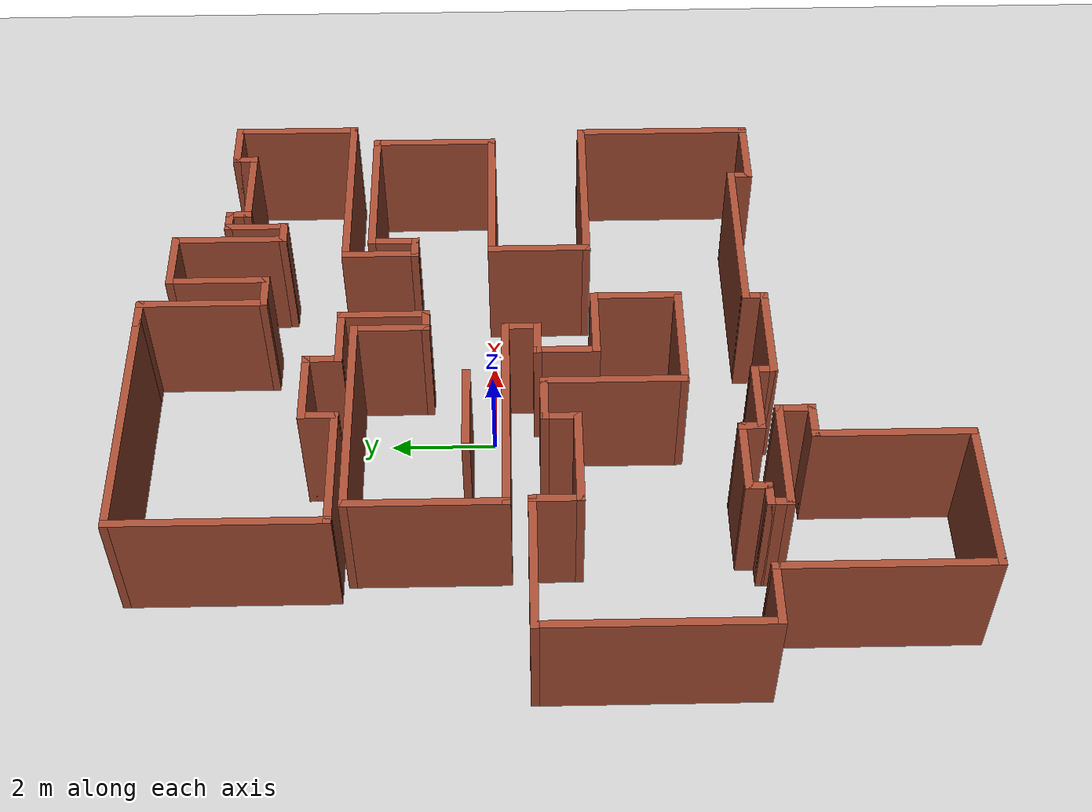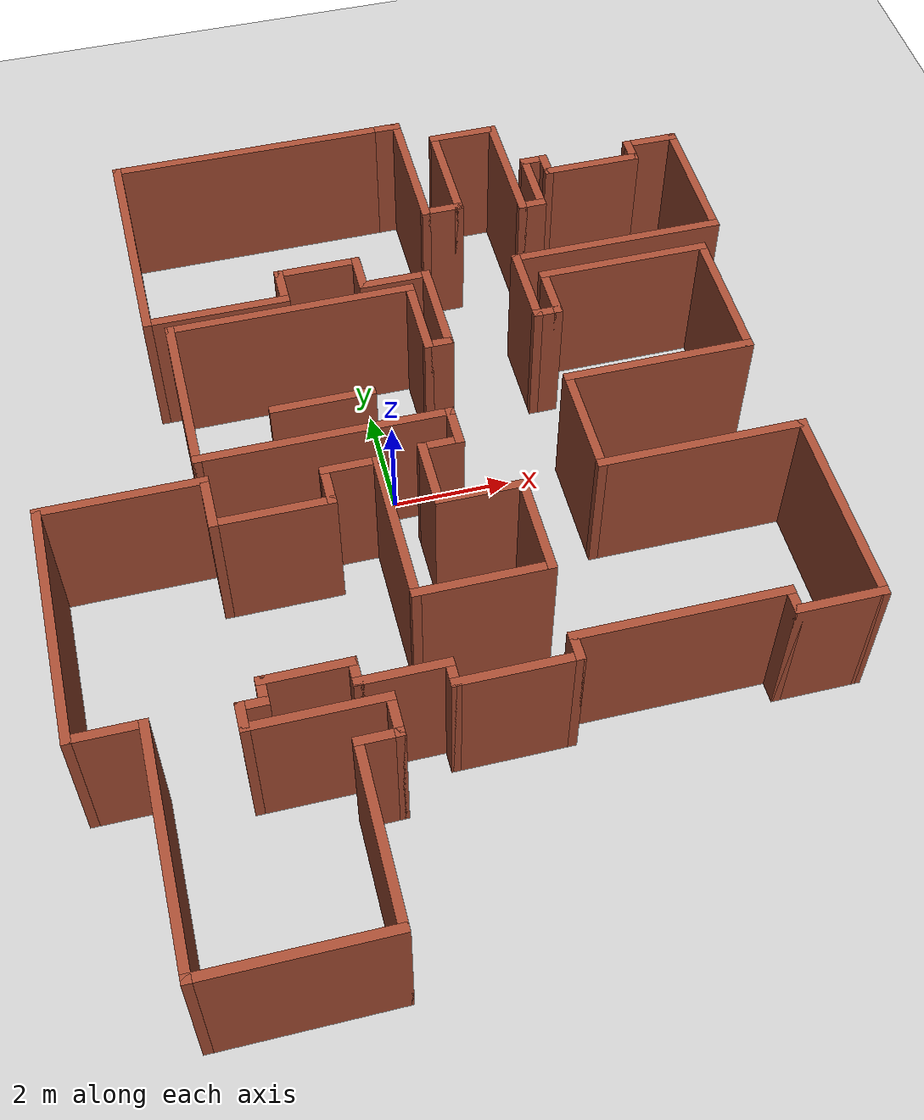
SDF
<sdf version="1.6">
 <world name="default">
  <model name="ground_plane">
   <static>1</static>
   <link name="link">
    <collision name="collision">
     <geometry><plane><normal>0 0 1</normal><size>100 100</size></plane></geometry>
     <surface>
      <contact><collide_bitmask>65535</collide_bitmask></contact>
      <friction><ode><mu>100</mu><mu2>50</mu2></ode></friction>
     </surface>
    </collision>
    <visual name="visual">
     <cast_shadows>0</cast_shadows>
     <geometry><plane><normal>0 0 1</normal><size>100 100</size></plane></geometry>
     <material>
      <script><uri>file://media/materials/scripts/gazebo.material</uri><name>Gazebo/Grey</name></script>
     </material>
    </visual>
   </link>
  </model>
  <model name="map_69">
   <pose>0.356982 -0.966036 0 0 -0 0</pose>
   <link name="Wall_0">
    <collision name="Wall_0_Collision">
     <geometry><box><size>4.82036 0.15 2.5</size></box></geometry>
     <pose>0 0 1.25 0 -0 0</pose>
    </collision>
    <visual name="Wall_0_Visual">
     <pose>0 0 1.25 0 -0 0</pose>
     <geometry><box><size>4.82036 0.15 2.5</size></box></geometry>
     <material>
      <script><uri>file://media/materials/scripts/gazebo.material</uri><name>Gazebo/Bricks</name></script>
      <ambient>1 1 1 1</ambient>
     </material>
     <meta><layer>0</layer></meta>
    </visual>
    <pose>-1.56482 7.675 0 0 -0 3.14159</pose>
   </link>
   <link name="Wall_10">
    <collision name="Wall_10_Collision">
     <geometry><box><size>1.5 0.15 2.5</size></box></geometry>
     <pose>0 0 1.25 0 -0 0</pose>
    </collision>
    <visual name="Wall_10_Visual">
     <pose>0 0 1.25 0 -0 0</pose>
     <geometry><box><size>1.5 0.15 2.5</size></box></geometry>
     <material>
      <script><uri>file://media/materials/scripts/gazebo.material</uri><name>Gazebo/Bricks</name></script>
      <ambient>1 1 1 1</ambient>
     </material>
     <meta><layer>0</layer></meta>
    </visual>
    <pose>-0.875 4.425 0 0 -0 0</pose>
   </link>
   <link name="Wall_11">
    <collision name="Wall_11_Collision">
     <geometry><box><size>0.75 0.15 2.5</size></box></geometry>
     <pose>0 0 1.25 0 -0 0</pose>
    </collision>
    <visual name="Wall_11_Visual">
     <pose>0 0 1.25 0 -0 0</pose>
     <geometry><box><size>0.75 0.15 2.5</size></box></geometry>
     <material>
      <script><uri>file://media/materials/scripts/gazebo.material</uri><name>Gazebo/Bricks</name></script>
      <ambient>1 1 1 1</ambient>
     </material>
     <meta><layer>0</layer></meta>
    </visual>
    <pose>-0.2 4.125 0 0 -0 -1.5708</pose>
   </link>
   <link name="Wall_12">
    <collision name="Wall_12_Collision">
     <geometry><box><size>1.25 0.15 2.5</size></box></geometry>
     <pose>0 0 1.25 0 -0 0</pose>
    </collision>
    <visual name="Wall_12_Visual">
     <pose>0 0 1.25 0 -0 0</pose>
     <geometry><box><size>1.25 0.15 2.5</size></box></geometry>
     <material>
      <script><uri>file://media/materials/scripts/gazebo.material</uri><name>Gazebo/Bricks</name></script>
      <ambient>1 1 1 1</ambient>
     </material>
     <meta><layer>0</layer></meta>
    </visual>
    <pose>0.35 3.825 0 0 -0 0</pose>
   </link>
   <link name="Wall_15">
    <collision name="Wall_15_Collision">
     <geometry><box><size>1.75 0.15 2.5</size></box></geometry>
     <pose>0 0 1.25 0 -0 0</pose>
    </collision>
    <visual name="Wall_15_Visual">
     <pose>0 0 1.25 0 -0 0</pose>
     <geometry><box><size>1.75 0.15 2.5</size></box></geometry>
     <material>
      <script><uri>file://media/materials/scripts/gazebo.material</uri><name>Gazebo/Bricks</name></script>
      <ambient>1 1 1 1</ambient>
     </material>
     <meta><layer>0</layer></meta>
    </visual>
    <pose>0.9 3.025 0 0 -0 -1.5708</pose>
   </link>
   <link name="Wall_16">
    <collision name="Wall_16_Collision">
     <geometry><box><size>0.5 0.15 2.5</size></box></geometry>
     <pose>0 0 1.25 0 -0 0</pose>
    </collision>
    <visual name="Wall_16_Visual">
     <pose>0 0 1.25 0 -0 0</pose>
     <geometry><box><size>0.5 0.15 2.5</size></box></geometry>
     <material>
      <script><uri>file://media/materials/scripts/gazebo.material</uri><name>Gazebo/Bricks</name></script>
      <ambient>1 1 1 1</ambient>
     </material>
     <meta><layer>0</layer></meta>
    </visual>
    <pose>0.725 2.225 0 0 -0 3.14159</pose>
   </link>
   <link name="Wall_19">
    <collision name="Wall_19_Collision">
     <geometry><box><size>1.5 0.15 2.5</size></box></geometry>
     <pose>0 0 1.25 0 -0 0</pose>
    </collision>
    <visual name="Wall_19_Visual">
     <pose>0 0 1.25 0 -0 0</pose>
     <geometry><box><size>1.5 0.15 2.5</size></box></geometry>
     <material>
      <script><uri>file://media/materials/scripts/gazebo.material</uri><name>Gazebo/Bricks</name></script>
      <ambient>1 1 1 1</ambient>
     </material>
     <meta><layer>0</layer></meta>
    </visual>
    <pose>0.55 2.9 0 0 -0 1.5708</pose>
   </link>
   <link name="Wall_20">
    <collision name="Wall_20_Collision">
     <geometry><box><size>4.25 0.15 2.5</size></box></geometry>
     <pose>0 0 1.25 0 -0 0</pose>
    </collision>
    <visual name="Wall_20_Visual">
     <pose>0 0 1.25 0 -0 0</pose>
     <geometry><box><size>4.25 0.15 2.5</size></box></geometry>
     <material>
      <script><uri>file://media/materials/scripts/gazebo.material</uri><name>Gazebo/Bricks</name></script>
      <ambient>1 1 1 1</ambient>
     </material>
     <meta><layer>0</layer></meta>
    </visual>
    <pose>-1.5 3.575 0 0 -0 3.14159</pose>
   </link>
   <link name="Wall_21">
    <collision name="Wall_21_Collision">
     <geometry><box><size>3 0.15 2.5</size></box></geometry>
     <pose>0 0 1.25 0 -0 0</pose>
    </collision>
    <visual name="Wall_21_Visual">
     <pose>0 0 1.25 0 -0 0</pose>
     <geometry><box><size>3 0.15 2.5</size></box></geometry>
     <material>
      <script><uri>file://media/materials/scripts/gazebo.material</uri><name>Gazebo/Bricks</name></script>
      <ambient>1 1 1 1</ambient>
     </material>
     <meta><layer>0</layer></meta>
    </visual>
    <pose>-3.55 2.15 0 0 -0 -1.5708</pose>
   </link>
   <link name="Wall_22">
    <collision name="Wall_22_Collision">
     <geometry><box><size>4.25 0.15 2.5</size></box></geometry>
     <pose>0 0 1.25 0 -0 0</pose>
    </collision>
    <visual name="Wall_22_Visual">
     <pose>0 0 1.25 0 -0 0</pose>
     <geometry><box><size>4.25 0.15 2.5</size></box></geometry>
     <material>
      <script><uri>file://media/materials/scripts/gazebo.material</uri><name>Gazebo/Bricks</name></script>
      <ambient>1 1 1 1</ambient>
     </material>
     <meta><layer>0</layer></meta>
    </visual>
    <pose>-1.5 0.725 0 0 -0 0</pose>
   </link>
   <link name="Wall_23">
    <collision name="Wall_23_Collision">
     <geometry><box><size>0.75 0.15 2.5</size></box></geometry>
     <pose>0 0 1.25 0 -0 0</pose>
    </collision>
    <visual name="Wall_23_Visual">
     <pose>0 0 1.25 0 -0 0</pose>
     <geometry><box><size>0.75 0.15 2.5</size></box></geometry>
     <material>
      <script><uri>file://media/materials/scripts/gazebo.material</uri><name>Gazebo/Bricks</name></script>
      <ambient>1 1 1 1</ambient>
     </material>
     <meta><layer>0</layer></meta>
    </visual>
    <pose>0.55 0.425 0 0 -0 -1.5708</pose>
   </link>
   <link name="Wall_24">
    <collision name="Wall_24_Collision">
     <geometry><box><size>0.75 0.15 2.5</size></box></geometry>
     <pose>0 0 1.25 0 -0 0</pose>
    </collision>
    <visual name="Wall_24_Visual">
     <pose>0 0 1.25 0 -0 0</pose>
     <geometry><box><size>0.75 0.15 2.5</size></box></geometry>
     <material>
      <script><uri>file://media/materials/scripts/gazebo.material</uri><name>Gazebo/Bricks</name></script>
      <ambient>1 1 1 1</ambient>
     </material>
     <meta><layer>0</layer></meta>
    </visual>
    <pose>0.25 0.125 0 0 -0 3.14159</pose>
   </link>
   <link name="Wall_25">
    <collision name="Wall_25_Collision">
     <geometry><box><size>1.25 0.15 2.5</size></box></geometry>
     <pose>0 0 1.25 0 -0 0</pose>
    </collision>
    <visual name="Wall_25_Visual">
     <pose>0 0 1.25 0 -0 0</pose>
     <geometry><box><size>1.25 0.15 2.5</size></box></geometry>
     <material>
      <script><uri>file://media/materials/scripts/gazebo.material</uri><name>Gazebo/Bricks</name></script>
      <ambient>1 1 1 1</ambient>
     </material>
     <meta><layer>0</layer></meta>
    </visual>
    <pose>-0.05 -0.425 0 0 -0 -1.5708</pose>
   </link>
   <link name="Wall_26">
    <collision name="Wall_26_Collision">
     <geometry><box><size>1.5 0.15 2.5</size></box></geometry>
     <pose>0 0 1.25 0 -0 0</pose>
    </collision>
    <visual name="Wall_26_Visual">
     <pose>0 0 1.25 0 -0 0</pose>
     <geometry><box><size>1.5 0.15 2.5</size></box></geometry>
     <material>
      <script><uri>file://media/materials/scripts/gazebo.material</uri><name>Gazebo/Bricks</name></script>
      <ambient>1 1 1 1</ambient>
     </material>
     <meta><layer>0</layer></meta>
    </visual>
    <pose>0.625 -0.975 0 0 -0 0</pose>
   </link>
   <link name="Wall_27">
    <collision name="Wall_27_Collision">
     <geometry><box><size>1.75 0.15 2.5</size></box></geometry>
     <pose>0 0 1.25 0 -0 0</pose>
    </collision>
    <visual name="Wall_27_Visual">
     <pose>0 0 1.25 0 -0 0</pose>
     <geometry><box><size>1.75 0.15 2.5</size></box></geometry>
     <material>
      <script><uri>file://media/materials/scripts/gazebo.material</uri><name>Gazebo/Bricks</name></script>
      <ambient>1 1 1 1</ambient>
     </material>
     <meta><layer>0</layer></meta>
    </visual>
    <pose>1.3 -1.775 0 0 -0 -1.5708</pose>
   </link>
   <link name="Wall_28">
    <collision name="Wall_28_Collision">
     <geometry><box><size>2.25 0.15 2.5</size></box></geometry>
     <pose>0 0 1.25 0 -0 0</pose>
    </collision>
    <visual name="Wall_28_Visual">
     <pose>0 0 1.25 0 -0 0</pose>
     <geometry><box><size>2.25 0.15 2.5</size></box></geometry>
     <material>
      <script><uri>file://media/materials/scripts/gazebo.material</uri><name>Gazebo/Bricks</name></script>
      <ambient>1 1 1 1</ambient>
     </material>
     <meta><layer>0</layer></meta>
    </visual>
    <pose>0.25 -2.575 0 0 -0 3.14159</pose>
   </link>
   <link name="Wall_29">
    <collision name="Wall_29_Collision">
     <geometry><box><size>2.75 0.15 2.5</size></box></geometry>
     <pose>0 0 1.25 0 -0 0</pose>
    </collision>
    <visual name="Wall_29_Visual">
     <pose>0 0 1.25 0 -0 0</pose>
     <geometry><box><size>2.75 0.15 2.5</size></box></geometry>
     <material>
      <script><uri>file://media/materials/scripts/gazebo.material</uri><name>Gazebo/Bricks</name></script>
      <ambient>1 1 1 1</ambient>
     </material>
     <meta><layer>0</layer></meta>
    </visual>
    <pose>-0.8 -1.275 0 0 -0 1.5708</pose>
   </link>
   <link name="Wall_30">
    <collision name="Wall_30_Collision">
     <geometry><box><size>1 0.15 2.5</size></box></geometry>
     <pose>0 0 1.25 0 -0 0</pose>
    </collision>
    <visual name="Wall_30_Visual">
     <pose>0 0 1.25 0 -0 0</pose>
     <geometry><box><size>1 0.15 2.5</size></box></geometry>
     <material>
      <script><uri>file://media/materials/scripts/gazebo.material</uri><name>Gazebo/Bricks</name></script>
      <ambient>1 1 1 1</ambient>
     </material>
     <meta><layer>0</layer></meta>
    </visual>
    <pose>-1.225 0.025 0 0 -0 3.14159</pose>
   </link>
   <link name="Wall_31">
    <collision name="Wall_31_Collision">
     <geometry><box><size>0.75 0.15 2.5</size></box></geometry>
     <pose>0 0 1.25 0 -0 0</pose>
    </collision>
    <visual name="Wall_31_Visual">
     <pose>0 0 1.25 0 -0 0</pose>
     <geometry><box><size>0.75 0.15 2.5</size></box></geometry>
     <material>
      <script><uri>file://media/materials/scripts/gazebo.material</uri><name>Gazebo/Bricks</name></script>
      <ambient>1 1 1 1</ambient>
     </material>
     <meta><layer>0</layer></meta>
    </visual>
    <pose>-1.65 -0.275 0 0 -0 -1.5708</pose>
   </link>
   <link name="Wall_32">
    <collision name="Wall_32_Collision">
     <geometry><box><size>2 0.15 2.5</size></box></geometry>
     <pose>0 0 1.25 0 -0 0</pose>
    </collision>
    <visual name="Wall_32_Visual">
     <pose>0 0 1.25 0 -0 0</pose>
     <geometry><box><size>2 0.15 2.5</size></box></geometry>
     <material>
      <script><uri>file://media/materials/scripts/gazebo.material</uri><name>Gazebo/Bricks</name></script>
      <ambient>1 1 1 1</ambient>
     </material>
     <meta><layer>0</layer></meta>
    </visual>
    <pose>-2.575 -0.575 0 0 -0 3.14159</pose>
   </link>
   <link name="Wall_33">
    <collision name="Wall_33_Collision">
     <geometry><box><size>1 0.15 2.5</size></box></geometry>
     <pose>0 0 1.25 0 -0 0</pose>
    </collision>
    <visual name="Wall_33_Visual">
     <pose>0 0 1.25 0 -0 0</pose>
     <geometry><box><size>1 0.15 2.5</size></box></geometry>
     <material>
      <script><uri>file://media/materials/scripts/gazebo.material</uri><name>Gazebo/Bricks</name></script>
      <ambient>1 1 1 1</ambient>
     </material>
     <meta><layer>0</layer></meta>
    </visual>
    <pose>-3.5 -0.15 0 0 -0 1.5708</pose>
   </link>
   <link name="Wall_34">
    <collision name="Wall_34_Collision">
     <geometry><box><size>2.75 0.15 2.5</size></box></geometry>
     <pose>0 0 1.25 0 -0 0</pose>
    </collision>
    <visual name="Wall_34_Visual">
     <pose>0 0 1.25 0 -0 0</pose>
     <geometry><box><size>2.75 0.15 2.5</size></box></geometry>
     <material>
      <script><uri>file://media/materials/scripts/gazebo.material</uri><name>Gazebo/Bricks</name></script>
      <ambient>1 1 1 1</ambient>
     </material>
     <meta><layer>0</layer></meta>
    </visual>
    <pose>-4.8 0.275 0 0 -0 3.14159</pose>
   </link>
   <link name="Wall_35">
    <collision name="Wall_35_Collision">
     <geometry><box><size>4.25 0.15 2.5</size></box></geometry>
     <pose>0 0 1.25 0 -0 0</pose>
    </collision>
    <visual name="Wall_35_Visual">
     <pose>0 0 1.25 0 -0 0</pose>
     <geometry><box><size>4.25 0.15 2.5</size></box></geometry>
     <material>
      <script><uri>file://media/materials/scripts/gazebo.material</uri><name>Gazebo/Bricks</name></script>
      <ambient>1 1 1 1</ambient>
     </material>
     <meta><layer>0</layer></meta>
    </visual>
    <pose>-6.1 -1.775 0 0 -0 -1.5708</pose>
   </link>
   <link name="Wall_36">
    <collision name="Wall_36_Collision">
     <geometry><box><size>1.25 0.15 2.5</size></box></geometry>
     <pose>0 0 1.25 0 -0 0</pose>
    </collision>
    <visual name="Wall_36_Visual">
     <pose>0 0 1.25 0 -0 0</pose>
     <geometry><box><size>1.25 0.15 2.5</size></box></geometry>
     <material>
      <script><uri>file://media/materials/scripts/gazebo.material</uri><name>Gazebo/Bricks</name></script>
      <ambient>1 1 1 1</ambient>
     </material>
     <meta><layer>0</layer></meta>
    </visual>
    <pose>-5.55 -3.825 0 0 -0 0</pose>
   </link>
   <link name="Wall_37">
    <collision name="Wall_37_Collision">
     <geometry><box><size>4 0.15 2.5</size></box></geometry>
     <pose>0 0 1.25 0 -0 0</pose>
    </collision>
    <visual name="Wall_37_Visual">
     <pose>0 0 1.25 0 -0 0</pose>
     <geometry><box><size>4 0.15 2.5</size></box></geometry>
     <material>
      <script><uri>file://media/materials/scripts/gazebo.material</uri><name>Gazebo/Bricks</name></script>
      <ambient>1 1 1 1</ambient>
     </material>
     <meta><layer>0</layer></meta>
    </visual>
    <pose>-5 -5.75 0 0 -0 -1.5708</pose>
   </link>
   <link name="Wall_38">
    <collision name="Wall_38_Collision">
     <geometry><box><size>3 0.15 2.5</size></box></geometry>
     <pose>0 0 1.25 0 -0 0</pose>
    </collision>
    <visual name="Wall_38_Visual">
     <pose>0 0 1.25 0 -0 0</pose>
     <geometry><box><size>3 0.15 2.5</size></box></geometry>
     <material>
      <script><uri>file://media/materials/scripts/gazebo.material</uri><name>Gazebo/Bricks</name></script>
      <ambient>1 1 1 1</ambient>
     </material>
     <meta><layer>0</layer></meta>
    </visual>
    <pose>-3.575 -7.675 0 0 -0 0</pose>
   </link>
   <link name="Wall_39">
    <collision name="Wall_39_Collision">
     <geometry><box><size>3 0.15 2.5</size></box></geometry>
     <pose>0 0 1.25 0 -0 0</pose>
    </collision>
    <visual name="Wall_39_Visual">
     <pose>0 0 1.25 0 -0 0</pose>
     <geometry><box><size>3 0.15 2.5</size></box></geometry>
     <material>
      <script><uri>file://media/materials/scripts/gazebo.material</uri><name>Gazebo/Bricks</name></script>
      <ambient>1 1 1 1</ambient>
     </material>
     <meta><layer>0</layer></meta>
    </visual>
    <pose>-2.15 -6.25 0 0 -0 1.5708</pose>
   </link>
   <link name="Wall_40">
    <collision name="Wall_40_Collision">
     <geometry><box><size>0.75 0.15 2.5</size></box></geometry>
     <pose>0 0 1.25 0 -0 0</pose>
    </collision>
    <visual name="Wall_40_Visual">
     <pose>0 0 1.25 0 -0 0</pose>
     <geometry><box><size>0.75 0.15 2.5</size></box></geometry>
     <material>
      <script><uri>file://media/materials/scripts/gazebo.material</uri><name>Gazebo/Bricks</name></script>
      <ambient>1 1 1 1</ambient>
     </material>
     <meta><layer>0</layer></meta>
    </visual>
    <pose>-1.85 -4.825 0 0 -0 0</pose>
   </link>
   <link name="Wall_41">
    <collision name="Wall_41_Collision">
     <geometry><box><size>0.75 0.15 2.5</size></box></geometry>
     <pose>0 0 1.25 0 -0 0</pose>
    </collision>
    <visual name="Wall_41_Visual">
     <pose>0 0 1.25 0 -0 0</pose>
     <geometry><box><size>0.75 0.15 2.5</size></box></geometry>
     <material>
      <script><uri>file://media/materials/scripts/gazebo.material</uri><name>Gazebo/Bricks</name></script>
      <ambient>1 1 1 1</ambient>
     </material>
     <meta><layer>0</layer></meta>
    </visual>
    <pose>-1.55 -4.525 0 0 -0 1.5708</pose>
   </link>
   <link name="Wall_42">
    <collision name="Wall_42_Collision">
     <geometry><box><size>2.25 0.15 2.5</size></box></geometry>
     <pose>0 0 1.25 0 -0 0</pose>
    </collision>
    <visual name="Wall_42_Visual">
     <pose>0 0 1.25 0 -0 0</pose>
     <geometry><box><size>2.25 0.15 2.5</size></box></geometry>
     <material>
      <script><uri>file://media/materials/scripts/gazebo.material</uri><name>Gazebo/Bricks</name></script>
      <ambient>1 1 1 1</ambient>
     </material>
     <meta><layer>0</layer></meta>
    </visual>
    <pose>-2.6 -4.225 0 0 -0 3.14159</pose>
   </link>
   <link name="Wall_45">
    <collision name="Wall_45_Collision">
     <geometry><box><size>0.5 0.15 2.5</size></box></geometry>
     <pose>0 0 1.25 0 -0 0</pose>
    </collision>
    <visual name="Wall_45_Visual">
     <pose>0 0 1.25 0 -0 0</pose>
     <geometry><box><size>0.5 0.15 2.5</size></box></geometry>
     <material>
      <script><uri>file://media/materials/scripts/gazebo.material</uri><name>Gazebo/Bricks</name></script>
      <ambient>1 1 1 1</ambient>
     </material>
     <meta><layer>0</layer></meta>
    </visual>
    <pose>-3.65 -4.05 0 0 -0 1.5708</pose>
   </link>
   <link name="Wall_46">
    <collision name="Wall_46_Collision">
     <geometry><box><size>0.5 0.15 2.5</size></box></geometry>
     <pose>0 0 1.25 0 -0 0</pose>
    </collision>
    <visual name="Wall_46_Visual">
     <pose>0 0 1.25 0 -0 0</pose>
     <geometry><box><size>0.5 0.15 2.5</size></box></geometry>
     <material>
      <script><uri>file://media/materials/scripts/gazebo.material</uri><name>Gazebo/Bricks</name></script>
      <ambient>1 1 1 1</ambient>
     </material>
     <meta><layer>0</layer></meta>
    </visual>
    <pose>-3.475 -3.875 0 0 -0 0</pose>
   </link>
   <link name="Wall_47">
    <collision name="Wall_47_Collision">
     <geometry><box><size>0.5 0.15 2.5</size></box></geometry>
     <pose>0 0 1.25 0 -0 0</pose>
    </collision>
    <visual name="Wall_47_Visual">
     <pose>0 0 1.25 0 -0 0</pose>
     <geometry><box><size>0.5 0.15 2.5</size></box></geometry>
     <material>
      <script><uri>file://media/materials/scripts/gazebo.material</uri><name>Gazebo/Bricks</name></script>
      <ambient>1 1 1 1</ambient>
     </material>
     <meta><layer>0</layer></meta>
    </visual>
    <pose>-3.3 -3.7 0 0 -0 1.5708</pose>
   </link>
   <link name="Wall_53">
    <collision name="Wall_53_Collision">
     <geometry><box><size>1.5 0.15 2.5</size></box></geometry>
     <pose>0 0 1.25 0 -0 0</pose>
    </collision>
    <visual name="Wall_53_Visual">
     <pose>0 0 1.25 0 -0 0</pose>
     <geometry><box><size>1.5 0.15 2.5</size></box></geometry>
     <material>
      <script><uri>file://media/materials/scripts/gazebo.material</uri><name>Gazebo/Bricks</name></script>
      <ambient>1 1 1 1</ambient>
     </material>
     <meta><layer>0</layer></meta>
    </visual>
    <pose>-2.625 -3.525 0 0 -0 0</pose>
   </link>
   <link name="Wall_54">
    <collision name="Wall_54_Collision">
     <geometry><box><size>0.5 0.15 2.5</size></box></geometry>
     <pose>0 0 1.25 0 -0 0</pose>
    </collision>
    <visual name="Wall_54_Visual">
     <pose>0 0 1.25 0 -0 0</pose>
     <geometry><box><size>0.5 0.15 2.5</size></box></geometry>
     <material>
      <script><uri>file://media/materials/scripts/gazebo.material</uri><name>Gazebo/Bricks</name></script>
      <ambient>1 1 1 1</ambient>
     </material>
     <meta><layer>0</layer></meta>
    </visual>
    <pose>-1.95 -3.7 0 0 -0 -1.5708</pose>
   </link>
   <link name="Wall_55">
    <collision name="Wall_55_Collision">
     <geometry><box><size>1.5 0.15 2.5</size></box></geometry>
     <pose>0 0 1.25 0 -0 0</pose>
    </collision>
    <visual name="Wall_55_Visual">
     <pose>0 0 1.25 0 -0 0</pose>
     <geometry><box><size>1.5 0.15 2.5</size></box></geometry>
     <material>
      <script><uri>file://media/materials/scripts/gazebo.material</uri><name>Gazebo/Bricks</name></script>
      <ambient>1 1 1 1</ambient>
     </material>
     <meta><layer>0</layer></meta>
    </visual>
    <pose>-1.275 -3.875 0 0 -0 0</pose>
   </link>
   <link name="Wall_56">
    <collision name="Wall_56_Collision">
     <geometry><box><size>0.5 0.15 2.5</size></box></geometry>
     <pose>0 0 1.25 0 -0 0</pose>
    </collision>
    <visual name="Wall_56_Visual">
     <pose>0 0 1.25 0 -0 0</pose>
     <geometry><box><size>0.5 0.15 2.5</size></box></geometry>
     <material>
      <script><uri>file://media/materials/scripts/gazebo.material</uri><name>Gazebo/Bricks</name></script>
      <ambient>1 1 1 1</ambient>
     </material>
     <meta><layer>0</layer></meta>
    </visual>
    <pose>-0.6 -4.05 0 0 -0 -1.5708</pose>
   </link>
   <link name="Wall_57">
    <collision name="Wall_57_Collision">
     <geometry><box><size>2 0.15 2.5</size></box></geometry>
     <pose>0 0 1.25 0 -0 0</pose>
    </collision>
    <visual name="Wall_57_Visual">
     <pose>0 0 1.25 0 -0 0</pose>
     <geometry><box><size>2 0.15 2.5</size></box></geometry>
     <material>
      <script><uri>file://media/materials/scripts/gazebo.material</uri><name>Gazebo/Bricks</name></script>
      <ambient>1 1 1 1</ambient>
     </material>
     <meta><layer>0</layer></meta>
    </visual>
    <pose>0.325 -4.225 0 0 -0 0</pose>
   </link>
   <link name="Wall_58">
    <collision name="Wall_58_Collision">
     <geometry><box><size>0.5 0.15 2.5</size></box></geometry>
     <pose>0 0 1.25 0 -0 0</pose>
    </collision>
    <visual name="Wall_58_Visual">
     <pose>0 0 1.25 0 -0 0</pose>
     <geometry><box><size>0.5 0.15 2.5</size></box></geometry>
     <material>
      <script><uri>file://media/materials/scripts/gazebo.material</uri><name>Gazebo/Bricks</name></script>
      <ambient>1 1 1 1</ambient>
     </material>
     <meta><layer>0</layer></meta>
    </visual>
    <pose>1.25 -4.05 0 0 -0 1.5708</pose>
   </link>
   <link name="Wall_59">
    <collision name="Wall_59_Collision">
     <geometry><box><size>3.5 0.15 2.5</size></box></geometry>
     <pose>0 0 1.25 0 -0 0</pose>
    </collision>
    <visual name="Wall_59_Visual">
     <pose>0 0 1.25 0 -0 0</pose>
     <geometry><box><size>3.5 0.15 2.5</size></box></geometry>
     <material>
      <script><uri>file://media/materials/scripts/gazebo.material</uri><name>Gazebo/Bricks</name></script>
      <ambient>1 1 1 1</ambient>
     </material>
     <meta><layer>0</layer></meta>
    </visual>
    <pose>2.925 -3.875 0 0 -0 0</pose>
   </link>
   <link name="Wall_60">
    <collision name="Wall_60_Collision">
     <geometry><box><size>0.5 0.15 2.5</size></box></geometry>
     <pose>0 0 1.25 0 -0 0</pose>
    </collision>
    <visual name="Wall_60_Visual">
     <pose>0 0 1.25 0 -0 0</pose>
     <geometry><box><size>0.5 0.15 2.5</size></box></geometry>
     <material>
      <script><uri>file://media/materials/scripts/gazebo.material</uri><name>Gazebo/Bricks</name></script>
      <ambient>1 1 1 1</ambient>
     </material>
     <meta><layer>0</layer></meta>
    </visual>
    <pose>4.6 -4.05 0 0 -0 -1.5708</pose>
   </link>
   <link name="Wall_61">
    <collision name="Wall_61_Collision">
     <geometry><box><size>1.5 0.15 2.5</size></box></geometry>
     <pose>0 0 1.25 0 -0 0</pose>
    </collision>
    <visual name="Wall_61_Visual">
     <pose>0 0 1.25 0 -0 0</pose>
     <geometry><box><size>1.5 0.15 2.5</size></box></geometry>
     <material>
      <script><uri>file://media/materials/scripts/gazebo.material</uri><name>Gazebo/Bricks</name></script>
      <ambient>1 1 1 1</ambient>
     </material>
     <meta><layer>0</layer></meta>
    </visual>
    <pose>5.275 -4.225 0 0 -0 0</pose>
   </link>
   <link name="Wall_62">
    <collision name="Wall_62_Collision">
     <geometry><box><size>3.5 0.15 2.5</size></box></geometry>
     <pose>0 0 1.25 0 -0 0</pose>
    </collision>
    <visual name="Wall_62_Visual">
     <pose>0 0 1.25 0 -0 0</pose>
     <geometry><box><size>3.5 0.15 2.5</size></box></geometry>
     <material>
      <script><uri>file://media/materials/scripts/gazebo.material</uri><name>Gazebo/Bricks</name></script>
      <ambient>1 1 1 1</ambient>
     </material>
     <meta><layer>0</layer></meta>
    </visual>
    <pose>5.95 -2.55 0 0 -0 1.5708</pose>
   </link>
   <link name="Wall_63">
    <collision name="Wall_63_Collision">
     <geometry><box><size>3.5 0.15 2.5</size></box></geometry>
     <pose>0 0 1.25 0 -0 0</pose>
    </collision>
    <visual name="Wall_63_Visual">
     <pose>0 0 1.25 0 -0 0</pose>
     <geometry><box><size>3.5 0.15 2.5</size></box></geometry>
     <material>
      <script><uri>file://media/materials/scripts/gazebo.material</uri><name>Gazebo/Bricks</name></script>
      <ambient>1 1 1 1</ambient>
     </material>
     <meta><layer>0</layer></meta>
    </visual>
    <pose>4.275 -0.875 0 0 -0 3.14159</pose>
   </link>
   <link name="Wall_64">
    <collision name="Wall_64_Collision">
     <geometry><box><size>2 0.15 2.5</size></box></geometry>
     <pose>0 0 1.25 0 -0 0</pose>
    </collision>
    <visual name="Wall_64_Visual">
     <pose>0 0 1.25 0 -0 0</pose>
     <geometry><box><size>2 0.15 2.5</size></box></geometry>
     <material>
      <script><uri>file://media/materials/scripts/gazebo.material</uri><name>Gazebo/Bricks</name></script>
      <ambient>1 1 1 1</ambient>
     </material>
     <meta><layer>0</layer></meta>
    </visual>
    <pose>2.6 0.05 0 0 -0 1.5708</pose>
   </link>
   <link name="Wall_65">
    <collision name="Wall_65_Collision">
     <geometry><box><size>3.25 0.15 2.5</size></box></geometry>
     <pose>0 0 1.25 0 -0 0</pose>
    </collision>
    <visual name="Wall_65_Visual">
     <pose>0 0 1.25 0 -0 0</pose>
     <geometry><box><size>3.25 0.15 2.5</size></box></geometry>
     <material>
      <script><uri>file://media/materials/scripts/gazebo.material</uri><name>Gazebo/Bricks</name></script>
      <ambient>1 1 1 1</ambient>
     </material>
     <meta><layer>0</layer></meta>
    </visual>
    <pose>4.15 0.975 0 0 -0 0</pose>
   </link>
   <link name="Wall_66">
    <collision name="Wall_66_Collision">
     <geometry><box><size>2.5 0.15 2.5</size></box></geometry>
     <pose>0 0 1.25 0 -0 0</pose>
    </collision>
    <visual name="Wall_66_Visual">
     <pose>0 0 1.25 0 -0 0</pose>
     <geometry><box><size>2.5 0.15 2.5</size></box></geometry>
     <material>
      <script><uri>file://media/materials/scripts/gazebo.material</uri><name>Gazebo/Bricks</name></script>
      <ambient>1 1 1 1</ambient>
     </material>
     <meta><layer>0</layer></meta>
    </visual>
    <pose>5.7 2.15 0 0 -0 1.5708</pose>
   </link>
   <link name="Wall_67">
    <collision name="Wall_67_Collision">
     <geometry><box><size>3 0.15 2.5</size></box></geometry>
     <pose>0 0 1.25 0 -0 0</pose>
    </collision>
    <visual name="Wall_67_Visual">
     <pose>0 0 1.25 0 -0 0</pose>
     <geometry><box><size>3 0.15 2.5</size></box></geometry>
     <material>
      <script><uri>file://media/materials/scripts/gazebo.material</uri><name>Gazebo/Bricks</name></script>
      <ambient>1 1 1 1</ambient>
     </material>
     <meta><layer>0</layer></meta>
    </visual>
    <pose>4.275 3.325 0 0 -0 3.14159</pose>
   </link>
   <link name="Wall_69">
    <collision name="Wall_69_Collision">
     <geometry><box><size>1 0.15 2.5</size></box></geometry>
     <pose>0 0 1.25 0 -0 0</pose>
    </collision>
    <visual name="Wall_69_Visual">
     <pose>0 0 1.25 0 -0 0</pose>
     <geometry><box><size>1 0.15 2.5</size></box></geometry>
     <material>
      <script><uri>file://media/materials/scripts/gazebo.material</uri><name>Gazebo/Bricks</name></script>
      <ambient>1 1 1 1</ambient>
     </material>
     <meta><layer>0</layer></meta>
    </visual>
    <pose>2.85 2.9 0 0 -0 -1.5708</pose>
   </link>
   <link name="Wall_7">
    <collision name="Wall_7_Collision">
     <geometry><box><size>4 0.15 2.5</size></box></geometry>
     <pose>0 0 1.25 0 -0 0</pose>
    </collision>
    <visual name="Wall_7_Visual">
     <pose>0 0 1.25 0 -0 0</pose>
     <geometry><box><size>4 0.15 2.5</size></box></geometry>
     <material>
      <script><uri>file://media/materials/scripts/gazebo.material</uri><name>Gazebo/Bricks</name></script>
      <ambient>1 1 1 1</ambient>
     </material>
     <meta><layer>0</layer></meta>
    </visual>
    <pose>-3.9 5.75 0 0 -0 -1.5708</pose>
   </link>
   <link name="Wall_70">
    <collision name="Wall_70_Collision">
     <geometry><box><size>0.5 0.15 2.5</size></box></geometry>
     <pose>0 0 1.25 0 -0 0</pose>
    </collision>
    <visual name="Wall_70_Visual">
     <pose>0 0 1.25 0 -0 0</pose>
     <geometry><box><size>0.5 0.15 2.5</size></box></geometry>
     <material>
      <script><uri>file://media/materials/scripts/gazebo.material</uri><name>Gazebo/Bricks</name></script>
      <ambient>1 1 1 1</ambient>
     </material>
     <meta><layer>0</layer></meta>
    </visual>
    <pose>2.675 2.475 0 0 -0 3.14159</pose>
   </link>
   <link name="Wall_71">
    <collision name="Wall_71_Collision">
     <geometry><box><size>1.5 0.15 2.5</size></box></geometry>
     <pose>0 0 1.25 0 -0 0</pose>
    </collision>
    <visual name="Wall_71_Visual">
     <pose>0 0 1.25 0 -0 0</pose>
     <geometry><box><size>1.5 0.15 2.5</size></box></geometry>
     <material>
      <script><uri>file://media/materials/scripts/gazebo.material</uri><name>Gazebo/Bricks</name></script>
      <ambient>1 1 1 1</ambient>
     </material>
     <meta><layer>0</layer></meta>
    </visual>
    <pose>2.5 3.15 0 0 -0 1.5708</pose>
   </link>
   <link name="Wall_74">
    <collision name="Wall_74_Collision">
     <geometry><box><size>3.75 0.15 2.5</size></box></geometry>
     <pose>0 0 1.25 0 -0 0</pose>
    </collision>
    <visual name="Wall_74_Visual">
     <pose>0 0 1.25 0 -0 0</pose>
     <geometry><box><size>3.75 0.15 2.5</size></box></geometry>
     <material>
      <script><uri>file://media/materials/scripts/gazebo.material</uri><name>Gazebo/Bricks</name></script>
      <ambient>1 1 1 1</ambient>
     </material>
     <meta><layer>0</layer></meta>
    </visual>
    <pose>4.3 3.825 0 0 -0 0</pose>
   </link>
   <link name="Wall_75">
    <collision name="Wall_75_Collision">
     <geometry><box><size>2.5 0.15 2.5</size></box></geometry>
     <pose>0 0 1.25 0 -0 0</pose>
    </collision>
    <visual name="Wall_75_Visual">
     <pose>0 0 1.25 0 -0 0</pose>
     <geometry><box><size>2.5 0.15 2.5</size></box></geometry>
     <material>
      <script><uri>file://media/materials/scripts/gazebo.material</uri><name>Gazebo/Bricks</name></script>
      <ambient>1 1 1 1</ambient>
     </material>
     <meta><layer>0</layer></meta>
    </visual>
    <pose>6.1 5 0 0 -0 1.5708</pose>
   </link>
   <link name="Wall_76">
    <collision name="Wall_76_Collision">
     <geometry><box><size>1 0.15 2.5</size></box></geometry>
     <pose>0 0 1.25 0 -0 0</pose>
    </collision>
    <visual name="Wall_76_Visual">
     <pose>0 0 1.25 0 -0 0</pose>
     <geometry><box><size>1 0.15 2.5</size></box></geometry>
     <material>
      <script><uri>file://media/materials/scripts/gazebo.material</uri><name>Gazebo/Bricks</name></script>
      <ambient>1 1 1 1</ambient>
     </material>
     <meta><layer>0</layer></meta>
    </visual>
    <pose>5.675 6.175 0 0 -0 3.14159</pose>
   </link>
   <link name="Wall_77">
    <collision name="Wall_77_Collision">
     <geometry><box><size>0.5 0.15 2.5</size></box></geometry>
     <pose>0 0 1.25 0 -0 0</pose>
    </collision>
    <visual name="Wall_77_Visual">
     <pose>0 0 1.25 0 -0 0</pose>
     <geometry><box><size>0.5 0.15 2.5</size></box></geometry>
     <material>
      <script><uri>file://media/materials/scripts/gazebo.material</uri><name>Gazebo/Bricks</name></script>
      <ambient>1 1 1 1</ambient>
     </material>
     <meta><layer>0</layer></meta>
    </visual>
    <pose>5.25 6 0 0 -0 -1.5708</pose>
   </link>
   <link name="Wall_78">
    <collision name="Wall_78_Collision">
     <geometry><box><size>1.75 0.15 2.5</size></box></geometry>
     <pose>0 0 1.25 0 -0 0</pose>
    </collision>
    <visual name="Wall_78_Visual">
     <pose>0 0 1.25 0 -0 0</pose>
     <geometry><box><size>1.75 0.15 2.5</size></box></geometry>
     <material>
      <script><uri>file://media/materials/scripts/gazebo.material</uri><name>Gazebo/Bricks</name></script>
      <ambient>1 1 1 1</ambient>
     </material>
     <meta><layer>0</layer></meta>
    </visual>
    <pose>4.45 5.825 0 0 -0 3.14159</pose>
   </link>
   <link name="Wall_79">
    <collision name="Wall_79_Collision">
     <geometry><box><size>0.5 0.15 2.5</size></box></geometry>
     <pose>0 0 1.25 0 -0 0</pose>
    </collision>
    <visual name="Wall_79_Visual">
     <pose>0 0 1.25 0 -0 0</pose>
     <geometry><box><size>0.5 0.15 2.5</size></box></geometry>
     <material>
      <script><uri>file://media/materials/scripts/gazebo.material</uri><name>Gazebo/Bricks</name></script>
      <ambient>1 1 1 1</ambient>
     </material>
     <meta><layer>0</layer></meta>
    </visual>
    <pose>3.65 6 0 0 -0 1.5708</pose>
   </link>
   <link name="Wall_8">
    <collision name="Wall_8_Collision">
     <geometry><box><size>2.5 0.15 2.5</size></box></geometry>
     <pose>0 0 1.25 0 -0 0</pose>
    </collision>
    <visual name="Wall_8_Visual">
     <pose>0 0 1.25 0 -0 0</pose>
     <geometry><box><size>2.5 0.15 2.5</size></box></geometry>
     <material>
      <script><uri>file://media/materials/scripts/gazebo.material</uri><name>Gazebo/Bricks</name></script>
      <ambient>1 1 1 1</ambient>
     </material>
     <meta><layer>0</layer></meta>
    </visual>
    <pose>-2.725 3.825 0 0 -0 0</pose>
   </link>
   <link name="Wall_82">
    <collision name="Wall_82_Collision">
     <geometry><box><size>0.5 0.15 2.5</size></box></geometry>
     <pose>0 0 1.25 0 -0 0</pose>
    </collision>
    <visual name="Wall_82_Visual">
     <pose>0 0 1.25 0 -0 0</pose>
     <geometry><box><size>0.5 0.15 2.5</size></box></geometry>
     <material>
      <script><uri>file://media/materials/scripts/gazebo.material</uri><name>Gazebo/Bricks</name></script>
      <ambient>1 1 1 1</ambient>
     </material>
     <meta><layer>0</layer></meta>
    </visual>
    <pose>3.475 6.175 0 0 -0 3.14159</pose>
   </link>
   <link name="Wall_83">
    <collision name="Wall_83_Collision">
     <geometry><box><size>1.25 0.15 2.5</size></box></geometry>
     <pose>0 0 1.25 0 -0 0</pose>
    </collision>
    <visual name="Wall_83_Visual">
     <pose>0 0 1.25 0 -0 0</pose>
     <geometry><box><size>1.25 0.15 2.5</size></box></geometry>
     <material>
      <script><uri>file://media/materials/scripts/gazebo.material</uri><name>Gazebo/Bricks</name></script>
      <ambient>1 1 1 1</ambient>
     </material>
     <meta><layer>0</layer></meta>
    </visual>
    <pose>3.3 5.625 0 0 -0 -1.5708</pose>
   </link>
   <link name="Wall_84">
    <collision name="Wall_84_Collision">
     <geometry><box><size>0.5 0.15 2.5</size></box></geometry>
     <pose>0 0 1.25 0 -0 0</pose>
    </collision>
    <visual name="Wall_84_Visual">
     <pose>0 0 1.25 0 -0 0</pose>
     <geometry><box><size>0.5 0.15 2.5</size></box></geometry>
     <material>
      <script><uri>file://media/materials/scripts/gazebo.material</uri><name>Gazebo/Bricks</name></script>
      <ambient>1 1 1 1</ambient>
     </material>
     <meta><layer>0</layer></meta>
    </visual>
    <pose>3.125 5.075 0 0 -0 3.14159</pose>
   </link>
   <link name="Wall_85">
    <collision name="Wall_85_Collision">
     <geometry><box><size>2.25 0.15 2.5</size></box></geometry>
     <pose>0 0 1.25 0 -0 0</pose>
    </collision>
    <visual name="Wall_85_Visual">
     <pose>0 0 1.25 0 -0 0</pose>
     <geometry><box><size>2.25 0.15 2.5</size></box></geometry>
     <material>
      <script><uri>file://media/materials/scripts/gazebo.material</uri><name>Gazebo/Bricks</name></script>
      <ambient>1 1 1 1</ambient>
     </material>
     <meta><layer>0</layer></meta>
    </visual>
    <pose>2.95 6.125 0 0 -0 1.5708</pose>
   </link>
   <link name="Wall_86">
    <collision name="Wall_86_Collision">
     <geometry><box><size>1.25 0.15 2.5</size></box></geometry>
     <pose>0 0 1.25 0 -0 0</pose>
    </collision>
    <visual name="Wall_86_Visual">
     <pose>0 0 1.25 0 -0 0</pose>
     <geometry><box><size>1.25 0.15 2.5</size></box></geometry>
     <material>
      <script><uri>file://media/materials/scripts/gazebo.material</uri><name>Gazebo/Bricks</name></script>
      <ambient>1 1 1 1</ambient>
     </material>
     <meta><layer>0</layer></meta>
    </visual>
    <pose>2.4 7.175 0 0 -0 3.14159</pose>
   </link>
   <link name="Wall_89">
    <collision name="Wall_89_Collision">
     <geometry><box><size>2 0.15 2.5</size></box></geometry>
     <pose>0 0 1.25 0 -0 0</pose>
    </collision>
    <visual name="Wall_89_Visual">
     <pose>0 0 1.25 0 -0 0</pose>
     <geometry><box><size>2 0.15 2.5</size></box></geometry>
     <material>
      <script><uri>file://media/materials/scripts/gazebo.material</uri><name>Gazebo/Bricks</name></script>
      <ambient>1 1 1 1</ambient>
     </material>
     <meta><layer>0</layer></meta>
    </visual>
    <pose>1.85 6.25 0 0 -0 -1.5708</pose>
   </link>
   <link name="Wall_9">
    <collision name="Wall_9_Collision">
     <geometry><box><size>0.75 0.15 2.5</size></box></geometry>
     <pose>0 0 1.25 0 -0 0</pose>
    </collision>
    <visual name="Wall_9_Visual">
     <pose>0 0 1.25 0 -0 0</pose>
     <geometry><box><size>0.75 0.15 2.5</size></box></geometry>
     <material>
      <script><uri>file://media/materials/scripts/gazebo.material</uri><name>Gazebo/Bricks</name></script>
      <ambient>1 1 1 1</ambient>
     </material>
     <meta><layer>0</layer></meta>
    </visual>
    <pose>-1.55 4.125 0 0 -0 1.5708</pose>
   </link>
   <link name="Wall_90">
    <collision name="Wall_90_Collision">
     <geometry><box><size>0.75 0.15 2.5</size></box></geometry>
     <pose>0 0 1.25 0 -0 0</pose>
    </collision>
    <visual name="Wall_90_Visual">
     <pose>0 0 1.25 0 -0 0</pose>
     <geometry><box><size>0.75 0.15 2.5</size></box></geometry>
     <material>
      <script><uri>file://media/materials/scripts/gazebo.material</uri><name>Gazebo/Bricks</name></script>
      <ambient>1 1 1 1</ambient>
     </material>
     <meta><layer>0</layer></meta>
    </visual>
    <pose>1.55 5.325 0 0 -0 3.14159</pose>
   </link>
   <link name="Wall_91">
    <collision name="Wall_91_Collision">
     <geometry><box><size>2.5 0.15 2.5</size></box></geometry>
     <pose>0 0 1.25 0 -0 0</pose>
    </collision>
    <visual name="Wall_91_Visual">
     <pose>0 0 1.25 0 -0 0</pose>
     <geometry><box><size>2.5 0.15 2.5</size></box></geometry>
     <material>
      <script><uri>file://media/materials/scripts/gazebo.material</uri><name>Gazebo/Bricks</name></script>
      <ambient>1 1 1 1</ambient>
     </material>
     <meta><layer>0</layer></meta>
    </visual>
    <pose>1.25 6.5 0 0 -0 1.5708</pose>
   </link>
   <link name="Wall_92">
    <collision name="Wall_92_Collision">
     <geometry><box><size>0.629642 0.15 2.5</size></box></geometry>
     <pose>0 0 1.25 0 -0 0</pose>
    </collision>
    <visual name="Wall_92_Visual">
     <pose>0 0 1.25 0 -0 0</pose>
     <geometry><box><size>0.629642 0.15 2.5</size></box></geometry>
     <material>
      <script><uri>file://media/materials/scripts/gazebo.material</uri><name>Gazebo/Bricks</name></script>
      <ambient>1 1 1 1</ambient>
     </material>
     <meta><layer>0</layer></meta>
    </visual>
    <pose>1.01018 7.675 0 0 -0 3.14159</pose>
   </link>
   <link name="Wall_94">
    <collision name="Wall_94_Collision">
     <geometry><box><size>1.75 0.15 2.5</size></box></geometry>
     <pose>0 0 1.25 0 -0 0</pose>
    </collision>
    <visual name="Wall_94_Visual">
     <pose>0 0 1.25 0 -0 0</pose>
     <geometry><box><size>1.75 0.15 2.5</size></box></geometry>
     <material>
      <script><uri>file://media/materials/scripts/gazebo.material</uri><name>Gazebo/Bricks</name></script>
      <ambient>1 1 1 1</ambient>
     </material>
     <meta><layer>0</layer></meta>
    </visual>
    <pose>-1.38466 1.44836 0 0 -0 0</pose>
   </link>
   <static>1</static>
  </model>
 </world>
</sdf>
